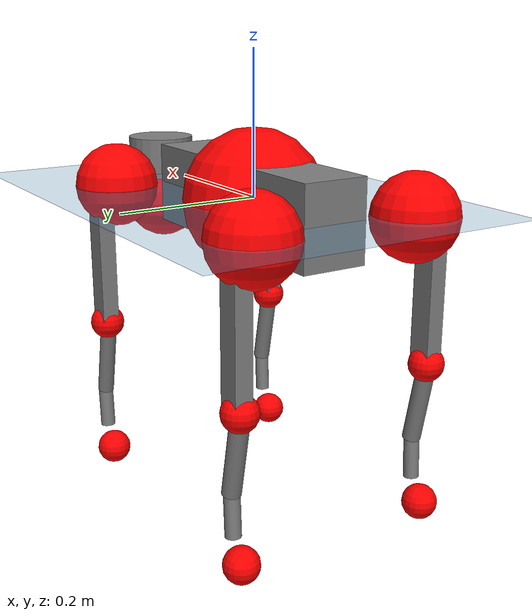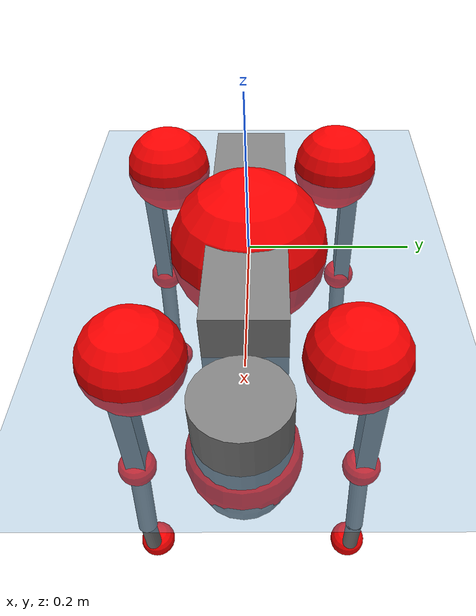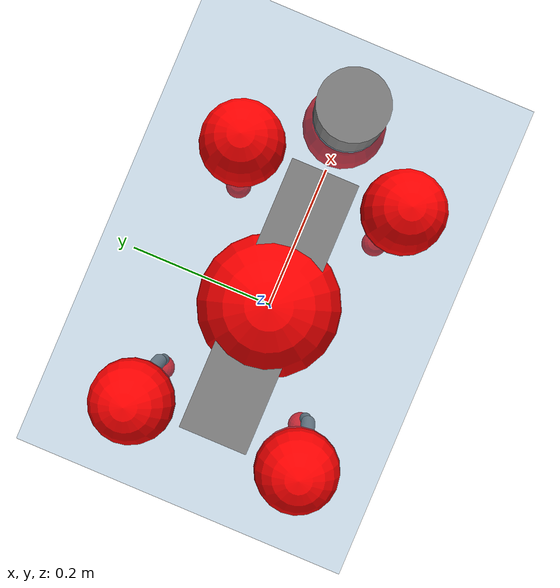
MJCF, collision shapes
<mujoco model="go2">
  <compiler angle="radian" assetdir="assets" balanceinertia="true" inertiafromgeom="false"/>

  <option timestep="0.005" density="1.2" viscosity="2e-05"/>

  <size nkey="1"/>

  <visual>
    <quality shadowsize="8192"/>
    <map shadowclip="0.5"/>
  </visual>

  <default>
    <default class="/">
      <geom contype="0" conaffinity="0" group="1" solref="-1000 -80"/>
      <site size="0.01 0.005 0.005" group="5"/>
      <general forcelimited="true" biastype="affine" gainprm="20" biasprm="0 -20 -0.5"/>
      <default class="go2">
        <joint armature="0.01" damping="0.01" frictionloss="0.2"/>
        <geom condim="1" margin="0.001"/>
        <default class="visual">
          <geom type="mesh" group="2"/>
        </default>
        <default class="collision">
          <geom group="3"/>
          <default class="foot">
            <geom size="0.022 0 0" condim="6" priority="1" friction="0.8 0.02 0.01" solimp="0.015 1 0.022"/>
          </default>
        </default>
        <default class="reward_collision_sphere">
          <geom group="5" rgba="1 0 0 1"/>
        </default>
      </default>
    </default>
  </default>

  <asset>
    <texture type="skybox" colorspace="auto" name="//unnamed_texture_0" builtin="gradient" rgb1="0.95 0.95 0.95" rgb2="0.95 0.95 0.95" width="100" height="600"/>
    <texture type="2d" colorspace="auto" name="texplane" builtin="checker" rgb1="0.345 0.575 0.748" rgb2="0.345 0.575 0.748" markrgb="1 1 1" width="512" height="512"/>
    <material name="MatPlane" class="/" texture="texplane" texuniform="true" texrepeat="2 2" specular="0.9"/>
    <material name="metal" class="/" rgba="0.9 0.95 0.95 1"/>
    <material name="black" class="/" rgba="0 0 0 1"/>
    <material name="white" class="/"/>
    <material name="gray" class="/" rgba="0.671705 0.692426 0.77427 1"/>
    <mesh name="base_0" class="/" file="base_0.obj"/>
    <mesh name="base_1" class="/" file="base_1.obj"/>
    <mesh name="base_2" class="/" file="base_2.obj"/>
    <mesh name="base_3" class="/" file="base_3.obj"/>
    <mesh name="base_4" class="/" file="base_4.obj"/>
    <mesh name="hip_0" class="/" file="hip_0.obj"/>
    <mesh name="hip_1" class="/" file="hip_1.obj"/>
    <mesh name="thigh_0" class="/" file="thigh_0.obj"/>
    <mesh name="thigh_1" class="/" file="thigh_1.obj"/>
    <mesh name="thigh_mirror_0" class="/" file="thigh_mirror_0.obj"/>
    <mesh name="thigh_mirror_1" class="/" file="thigh_mirror_1.obj"/>
    <mesh name="calf_0" class="/" file="calf_0.obj"/>
    <mesh name="calf_1" class="/" file="calf_1.obj"/>
    <mesh name="calf_mirror_0" class="/" file="calf_mirror_0.obj"/>
    <mesh name="calf_mirror_1" class="/" file="calf_mirror_1.obj"/>
    <mesh name="foot" class="/" file="foot.obj"/>
  </asset>

  <worldbody>
    <geom name="floor" class="/" size="100 100 0.125" type="plane" group="0" material="MatPlane"/>
    <light name="toplight_shadow" class="/" pos="0 0 5" dir="0.0990148 0.0990148 -0.990148" type="directional" ambient="0.04 0.04 0.04" diffuse="0.55 0.55 0.55" specular="0.12 0.12 0.12"/>
    <light name="toplight_fill" class="/" pos="0 0 5" dir="0.0990148 0.0990148 -0.990148" type="directional" castshadow="false" ambient="0.04 0.04 0.04" diffuse="0.3 0.3 0.3" specular="0.08 0.08 0.08"/>
    <body name="trunk" childclass="go2" pos="-0.00104145 0.000139593 -0.00283599" quat="1 -0.000500653 -7.72958e-05 0.00013216">
      <inertial pos="0.0179361 -0.00260878 -0.00333129" quat="-0.00667825 0.712557 -0.00170373 0.70158" mass="6.96835" diaginertia="0.10735 0.116997 0.0224702"/>
      <joint name="//unnamed_joint_0" type="free" armature="0" damping="0" frictionloss="0"/>
      <geom name="//unnamed_geom_1" class="visual" material="black" mesh="base_0"/>
      <geom name="//unnamed_geom_2" class="visual" material="black" mesh="base_1"/>
      <geom name="//unnamed_geom_3" class="visual" material="black" mesh="base_2"/>
      <geom name="//unnamed_geom_4" class="visual" material="white" mesh="base_3"/>
      <geom name="//unnamed_geom_5" class="visual" material="gray" mesh="base_4"/>
      <geom name="trunk_1" class="collision" size="0.187674 0.0466441 0.0568709" type="box"/>
      <geom name="trunk_2" class="collision" size="0.0498868 0.0448981" pos="0.281942 0 0.00974418" type="cylinder"/>
      <geom name="trunk_3" class="collision" size="0.0468936" pos="0.289857 0 -0.0584651"/>
      <geom name="//unnamed_geom_9" class="reward_collision_sphere" size="0.0997735"/>
      <geom name="//unnamed_geom_10" class="reward_collision_sphere" size="0.0598641" pos="0.276996 0 -0.0438488"/>
      <site name="imu" pos="-0.0328987 0.00459022 0.0533433" size="0.00997735"/>
      <camera name="track" pos="0 -2.05903 0" quat="0.707107 0.707107 0 0" mode="trackcom"/>
      <camera name="ego_camera" pos="0.308653 0 0.0438488" quat="-0.5 -0.5 0.5 0.5"/>
      <body name="FL_hip" pos="0.189803 0.0474282 0.00319934" quat="0.999999 -0.00018559 0.000899868 0.000484316">
        <inertial pos="-0.00301389 0.00017565 0.000870852" quat="0.506577 0.490838 0.507762 0.494607" mass="0.658179" diaginertia="0.000820295 0.000689369 0.000429445"/>
        <joint name="FL_hip_joint" pos="0 0 0" axis="0.999916 0.00276891 0.0126476" stiffness="0.0016823" range="-1.02718 1.10152" armature="0.0109535" damping="0.0100017" frictionloss="0.205223"/>
        <geom name="//unnamed_geom_11" class="visual" material="metal" mesh="hip_0"/>
        <geom name="//unnamed_geom_12" class="visual" material="gray" mesh="hip_1"/>
        <geom name="//unnamed_geom_13" class="collision" size="0.0458958 0.0199547" pos="0 0.0823613 0" quat="0.707107 0.707107 0 0" type="cylinder"/>
        <geom name="//unnamed_geom_14" class="reward_collision_sphere" size="0.0598641" pos="0 0.0720662 0"/>
        <body name="FL_thigh" pos="-0.00142516 0.0992611 0.000655577" quat="1 -0.000307732 -0.000314773 -0.000245841">
          <inertial pos="-0.00193811 -0.022749 -0.0295387" quat="0.829866 0.0863386 -0.022019 0.550803" mass="1.17025" diaginertia="0.00542034 0.00668849 0.000769216"/>
          <joint name="FL_thigh_joint" pos="0 0 0" axis="0.000431808 0.999999 0.00111086" stiffness="0.000731313" range="-1.57435 3.49346" armature="0.00966218" damping="0.00475665" frictionloss="0.17548"/>
          <geom name="//unnamed_geom_15" class="visual" material="metal" mesh="thigh_0"/>
          <geom name="//unnamed_geom_16" class="visual" material="gray" mesh="thigh_1"/>
          <geom name="//unnamed_geom_17" class="collision" size="0.106259 0.0122223 0.0169615" pos="0 0 -0.103776" quat="0.707107 0 0.707107 0" type="box"/>
          <body name="FL_calf" pos="0.00259971 -0.00212242 -0.209413" quat="0.999999 -0.000533648 -0.000816815 -0.00109547">
            <inertial pos="0.00609241 -0.00108407 -0.137751" quat="0.709635 0.0012423 -0.00402217 0.704557" mass="0.233558" diaginertia="0.00136996 0.00168514 4.52904e-05"/>
            <joint name="FL_calf_joint" pos="0 0 0" axis="0.000475801 0.999765 -0.0216778" range="-2.78096 -0.804171" armature="0.0111643" damping="0" frictionloss="0.227353"/>
            <geom name="//unnamed_geom_18" class="visual" material="gray" mesh="calf_0"/>
            <geom name="//unnamed_geom_19" class="visual" material="black" mesh="calf_1"/>
            <geom name="FL_calf0" class="collision" size="0.0119728 0.0598641" pos="0.00791417 0 -0.0584651" quat="0.994493 0 -0.104807 0" type="cylinder"/>
            <geom name="//unnamed_geom_21" class="collision" size="0.0109751 0.0324264" pos="0.0197854 0 -0.144214" quat="0.999688 0 0.0249974 0" type="cylinder"/>
            <geom name="//unnamed_geom_22" class="visual" pos="0 0 -0.207551" quat="1 0 0 0" material="black" mesh="foot"/>
            <geom name="FL_foot" class="foot" size="0.01595" pos="-0.00197854 0 -0.207551"/>
            <geom name="//unnamed_geom_24" class="reward_collision_sphere" size="0.0249434"/>
            <geom name="//unnamed_geom_25" class="reward_collision_sphere" size="0.0249434" pos="-0.00197854 0 -0.207551"/>
            <site name="FL_foot" class="foot" pos="-0.00197854 0 -0.207551" size="0.00997735"/>
          </body>
        </body>
      </body>
      <body name="FR_hip" pos="0.189104 -0.0480125 -5.9108e-05" quat="1 7.18847e-05 -1.95997e-05 -0.000126468">
        <inertial pos="-0.00277408 -0.000908681 -0.00135699" quat="0.497718 0.504976 0.498687 0.498585" mass="0.694646" diaginertia="0.000844742 0.000736308 0.000434525"/>
        <joint name="FR_hip_joint" pos="0 0 0" axis="0.999968 -0.00610405 0.00515386" stiffness="0.000584277" range="-1.09583 1.03268" armature="0.00879783" damping="0.00496768" frictionloss="0.175847"/>
        <geom name="//unnamed_geom_26" class="visual" pos="0 4.79997e-10 2.05881e-08" quat="4.63268e-05 1 0 0" material="metal" mesh="hip_0"/>
        <geom name="//unnamed_geom_27" class="visual" pos="0 7.78133e-10 -5.09222e-08" quat="4.63268e-05 1 0 0" material="gray" mesh="hip_1"/>
        <geom name="//unnamed_geom_28" class="collision" size="0.0458958 0.0199547" pos="0 -0.0823613 0" quat="0.707107 0.707107 0 0" type="cylinder"/>
        <geom name="//unnamed_geom_29" class="reward_collision_sphere" size="0.0598641" pos="0 -0.0720662 0"/>
        <body name="FR_thigh" pos="-0.00171532 -0.0960229 -0.00194893" quat="1 2.53129e-05 0.000148722 0.000123682">
          <inertial pos="-0.0034587 0.0222136 -0.0306931" quat="0.551016 -0.0177908 0.0724979 0.831149" mass="1.07633" diaginertia="0.00536905 0.00674623 0.000765155"/>
          <joint name="FR_thigh_joint" pos="0 0 0" axis="-0.00569285 -0.999945 0.00885378" range="-3.45892 1.62528" armature="0.0101647" damping="0" frictionloss="0.209294"/>
          <geom name="//unnamed_geom_30" class="visual" material="metal" mesh="thigh_mirror_0"/>
          <geom name="//unnamed_geom_31" class="visual" material="gray" mesh="thigh_mirror_1"/>
          <geom name="//unnamed_geom_32" class="collision" size="0.106259 0.0122223 0.0169615" pos="0 0 -0.103776" quat="0.707107 0 0.707107 0" type="box"/>
          <body name="FR_calf" pos="0.00214378 -0.00189475 -0.205556" quat="1 -0.000305646 3.60903e-05 0.000132669">
            <inertial pos="0.00563798 0.00140726 -0.135727" quat="0.694258 -0.00600787 -0.000849685 0.719701" mass="0.24313" diaginertia="0.00138792 0.00164155 4.64302e-05"/>
            <joint name="FR_calf_joint" pos="0 0 0" axis="-0.00254738 -0.999959 -0.00871348" range="0.783361 2.778" armature="0.00949391" damping="0.00511679" frictionloss="0.181518"/>
            <geom name="//unnamed_geom_33" class="visual" material="gray" mesh="calf_mirror_0"/>
            <geom name="//unnamed_geom_34" class="visual" material="black" mesh="calf_mirror_1"/>
            <geom name="FR_calf0" class="collision" size="0.0129706 0.0598641" pos="0.00989271 0 -0.0584651" quat="0.995004 0 -0.0998334 0" type="cylinder"/>
            <geom name="//unnamed_geom_36" class="collision" size="0.0109751 0.0324264" pos="0.0197854 0 -0.144214" quat="0.999688 0 0.0249974 0" type="cylinder"/>
            <geom name="//unnamed_geom_37" class="visual" pos="0 0 -0.207551" quat="1 0 0 0" material="black" mesh="foot"/>
            <geom name="FR_foot" class="foot" size="0.021788" pos="-0.00197854 0 -0.207551"/>
            <geom name="//unnamed_geom_39" class="reward_collision_sphere" size="0.0249434"/>
            <geom name="//unnamed_geom_40" class="reward_collision_sphere" size="0.0249434" pos="-0.00197854 0 -0.207551"/>
            <site name="FR_foot" class="foot" pos="-0.00197854 0 -0.207551" size="0.00997735"/>
          </body>
        </body>
      </body>
      <body name="RL_hip" pos="-0.1929 0.0501697 -0.00023172" quat="1 0.000415286 -0.000281759 0.000341956">
        <inertial pos="0.00729742 0.00445821 -0.0011812" quat="0.513735 0.492108 0.489589 0.504191" mass="0.674686" diaginertia="0.000798099 0.000681778 0.000395716"/>
        <joint name="RL_hip_joint" pos="0 0 0" axis="-1 0.000428039 -0.000305108" range="-1.019 1.02655" armature="0.00869805" damping="0" frictionloss="0.204193"/>
        <geom name="//unnamed_geom_41" class="visual" pos="-1.29396e-10 0 -2.53647e-08" quat="4.63268e-05 0 1 0" material="metal" mesh="hip_0"/>
        <geom name="//unnamed_geom_42" class="visual" pos="-2.09767e-10 0 -2.24948e-08" quat="4.63268e-05 0 1 0" material="gray" mesh="hip_1"/>
        <geom name="//unnamed_geom_43" class="collision" size="0.0458958 0.0199547" pos="0 0.0823613 0" quat="0.707107 0.707107 0 0" type="cylinder"/>
        <geom name="//unnamed_geom_44" class="reward_collision_sphere" size="0.0598641" pos="0 0.0720662 0"/>
        <body name="RL_thigh" pos="-0.00275308 0.0965816 -0.00101804" quat="1 -4.29632e-06 1.02844e-06 -5.84353e-06">
          <inertial pos="-0.00396222 -0.0200141 -0.0310666" quat="0.83123 0.0810964 -0.0178601 0.549691" mass="1.14273" diaginertia="0.00565973 0.00653549 0.000780754"/>
          <joint name="RL_thigh_joint" pos="0 0 0" axis="0.00276327 0.999979 -0.00592716" stiffness="0.0143338" range="-0.518815 4.56119" armature="0.0087897" damping="0" frictionloss="0.21297"/>
          <geom name="//unnamed_geom_45" class="visual" material="metal" mesh="thigh_0"/>
          <geom name="//unnamed_geom_46" class="visual" material="gray" mesh="thigh_1"/>
          <geom name="//unnamed_geom_47" class="collision" size="0.106259 0.0122223 0.0169615" pos="0 0 -0.103776" quat="0.707107 0 0.707107 0" type="box"/>
          <body name="RL_calf" pos="-0.00258871 -0.0026545 -0.209441" quat="1 -0.000479734 -0.000135023 0.000481558">
            <inertial pos="0.0061171 -0.000756957 -0.136963" quat="0.707215 0.00188406 -0.00252218 0.706992" mass="0.241229" diaginertia="0.0014052 0.00168198 4.61158e-05"/>
            <joint name="RL_calf_joint" pos="0 0 0" axis="0.00142274 0.999983 0.00573663" range="-2.72557 -0.840913" armature="0.00869869" damping="0.00538189" frictionloss="0.227742"/>
            <geom name="//unnamed_geom_48" class="visual" material="gray" mesh="calf_0"/>
            <geom name="//unnamed_geom_49" class="visual" material="black" mesh="calf_1"/>
            <geom name="RL_calf0" class="collision" size="0.0129706 0.0598641" pos="0.00989271 0 -0.0584651" quat="0.995004 0 -0.0998334 0" type="cylinder"/>
            <geom name="//unnamed_geom_51" class="collision" size="0.0109751 0.0324264" pos="0.0197854 0 -0.144214" quat="0.999688 0 0.0249974 0" type="cylinder"/>
            <geom name="//unnamed_geom_52" class="visual" pos="0 0 -0.207551" quat="1 0 0 0" material="black" mesh="foot"/>
            <geom name="RL_foot" class="foot" size="0.0184075" pos="-0.00197854 0 -0.207551"/>
            <geom name="//unnamed_geom_54" class="reward_collision_sphere" size="0.0249434"/>
            <geom name="//unnamed_geom_55" class="reward_collision_sphere" size="0.0249434" pos="-0.00197854 0 -0.207551"/>
            <site name="RL_foot" class="foot" pos="-0.00197854 0 -0.207551" size="0.00997735"/>
          </body>
        </body>
      </body>
      <body name="RR_hip" pos="-0.192652 -0.050661 -0.0021726" quat="0.999999 0.00130703 -0.000244925 -0.000400145">
        <inertial pos="0.0031889 -0.00222683 0.00240863" quat="0.497789 0.496059 0.499102 0.50698" mass="0.655187" diaginertia="0.00081845 0.000667573 0.00040013"/>
        <joint name="RR_hip_joint" pos="0 0 0" axis="-0.999999 -0.0013684 -9.12296e-05" range="-1.09759 1.0779" armature="0.00977898" damping="0.000241123" frictionloss="0.202965"/>
        <geom name="//unnamed_geom_56" class="visual" pos="1.3079e-10 4.79997e-10 -4.59527e-08" quat="2.14617e-09 4.63268e-05 4.63268e-05 -1" material="metal" mesh="hip_0"/>
        <geom name="//unnamed_geom_57" class="visual" pos="2.06321e-10 7.78133e-10 2.84273e-08" quat="2.14617e-09 4.63268e-05 4.63268e-05 -1" material="gray" mesh="hip_1"/>
        <geom name="//unnamed_geom_58" class="collision" size="0.0458958 0.0199547" pos="0 -0.0823613 0" quat="0.707107 0.707107 0 0" type="cylinder"/>
        <geom name="//unnamed_geom_59" class="reward_collision_sphere" size="0.0598641" pos="0 -0.0720662 0"/>
        <body name="RR_thigh" pos="-0.00143982 -0.101051 0.0013149" quat="1 -0.00018459 0.000243596 -0.000392498">
          <inertial pos="-0.000763146 0.0232201 -0.0324529" quat="0.551648 -0.019257 0.0854242 0.829467" mass="1.10204" diaginertia="0.00537307 0.00662306 0.00075875"/>
          <joint name="RR_thigh_joint" pos="0 0 0" axis="0.0150625 -0.999847 -0.0088675" range="-4.54859 0.528141" armature="0.00911656" damping="0.00513503" frictionloss="0.204534"/>
          <geom name="//unnamed_geom_60" class="visual" material="metal" mesh="thigh_mirror_0"/>
          <geom name="//unnamed_geom_61" class="visual" material="gray" mesh="thigh_mirror_1"/>
          <geom name="//unnamed_geom_62" class="collision" size="0.106259 0.0122223 0.0169615" pos="0 0 -0.103776" quat="0.707107 0 0.707107 0" type="box"/>
          <body name="RR_calf" pos="-0.00185557 -0.000849394 -0.207448" quat="0.999999 0.00104325 8.22371e-05 -0.000271162">
            <inertial pos="0.00431707 0.000567865 -0.138572" quat="0.699887 0.00745312 0.00276004 0.71421" mass="0.233715" diaginertia="0.00134933 0.00172742 4.58472e-05"/>
            <joint name="RR_calf_joint" pos="0 0 0" axis="0.00244282 -0.999993 -0.00287867" stiffness="0.011334" range="0.846538 2.71013" armature="0.00910379" damping="0.0203642" frictionloss="0.19857"/>
            <geom name="//unnamed_geom_63" class="visual" material="gray" mesh="calf_mirror_0"/>
            <geom name="//unnamed_geom_64" class="visual" material="black" mesh="calf_mirror_1"/>
            <geom name="RR_calf0" class="collision" size="0.0129706 0.0598641" pos="0.00989271 0 -0.0584651" quat="0.995004 0 -0.0998334 0" type="cylinder"/>
            <geom name="//unnamed_geom_66" class="collision" size="0.0109751 0.0324264" pos="0.0197854 0 -0.144214" quat="0.999688 0 0.0249974 0" type="cylinder"/>
            <geom name="//unnamed_geom_67" class="visual" pos="0 0 -0.207551" quat="1 0 0 0" material="black" mesh="foot"/>
            <geom name="RR_foot" class="foot" size="0.0197123" pos="-0.00197854 0 -0.207551"/>
            <geom name="//unnamed_geom_69" class="reward_collision_sphere" size="0.0249434"/>
            <geom name="//unnamed_geom_70" class="reward_collision_sphere" size="0.0249434" pos="-0.00197854 0 -0.207551"/>
            <site name="RR_foot" class="foot" pos="-0.00197854 0 -0.207551" size="0.00997735"/>
          </body>
        </body>
      </body>
    </body>
  </worldbody>

  <contact>
    <pair class="/" geom1="floor" geom2="FL_foot" name="//unnamed_contact_0"/>
    <pair class="/" geom1="floor" geom2="FR_foot" name="//unnamed_contact_1"/>
    <pair class="/" geom1="floor" geom2="RL_foot" name="//unnamed_contact_2"/>
    <pair class="/" geom1="floor" geom2="RR_foot" name="//unnamed_contact_3"/>
  </contact>

  <actuator>
    <general name="FL_hip" class="/" joint="FL_hip_joint" forcerange="-24.2589 24.2589" gainprm="20.0118" biasprm="0 -20.0118 -0.491656"/>
    <general name="FL_thigh" class="/" joint="FL_thigh_joint" forcerange="-21.2847 21.2847" gainprm="20.0118" biasprm="0 -20.0118 -0.491656"/>
    <general name="FL_calf" class="/" joint="FL_calf_joint" forcerange="-44.7696 44.7696" gainprm="20.0118" biasprm="0 -20.0118 -0.491656"/>
    <general name="FR_hip" class="/" joint="FR_hip_joint" forcerange="-21.1579 21.1579" gainprm="20.0118" biasprm="0 -20.0118 -0.491656"/>
    <general name="FR_thigh" class="/" joint="FR_thigh_joint" forcerange="-25.5105 25.5105" gainprm="20.0118" biasprm="0 -20.0118 -0.491656"/>
    <general name="FR_calf" class="/" joint="FR_calf_joint" forcerange="-40.8516 40.8516" gainprm="20.0118" biasprm="0 -20.0118 -0.491656"/>
    <general name="RL_hip" class="/" joint="RL_hip_joint" forcerange="-23.5336 23.5336" gainprm="20.0118" biasprm="0 -20.0118 -0.491656"/>
    <general name="RL_thigh" class="/" joint="RL_thigh_joint" forcerange="-21.5841 21.5841" gainprm="20.0118" biasprm="0 -20.0118 -0.491656"/>
    <general name="RL_calf" class="/" joint="RL_calf_joint" forcerange="-45.2165 45.2165" gainprm="20.0118" biasprm="0 -20.0118 -0.491656"/>
    <general name="RR_hip" class="/" joint="RR_hip_joint" forcerange="-22.5677 22.5677" gainprm="20.0118" biasprm="0 -20.0118 -0.491656"/>
    <general name="RR_thigh" class="/" joint="RR_thigh_joint" forcerange="-21.9816 21.9816" gainprm="20.0118" biasprm="0 -20.0118 -0.491656"/>
    <general name="RR_calf" class="/" joint="RR_calf_joint" forcerange="-49.7045 49.7045" gainprm="20.0118" biasprm="0 -20.0118 -0.491656"/>
  </actuator>

  <sensor>
    <gyro site="imu" name="imu_angular_velocity"/>
    <velocimeter site="imu" name="imu_linear_velocity"/>
    <framelinvel objtype="site" objname="FL_foot" name="FL_foot_global_linear_velocity"/>
    <framelinvel objtype="site" objname="FR_foot" name="FR_foot_global_linear_velocity"/>
    <framelinvel objtype="site" objname="RL_foot" name="RL_foot_global_linear_velocity"/>
    <framelinvel objtype="site" objname="RR_foot" name="RR_foot_global_linear_velocity"/>
  </sensor>

  <keyframe>
    <key name="home" qpos="0 0 0.325 1 0 0 0 0.1 0.8 -1.5 -0.1 -0.8 1.5 -0.1 0.8 -1.5 0.1 -0.8 1.5"/>
  </keyframe>
</mujoco>
